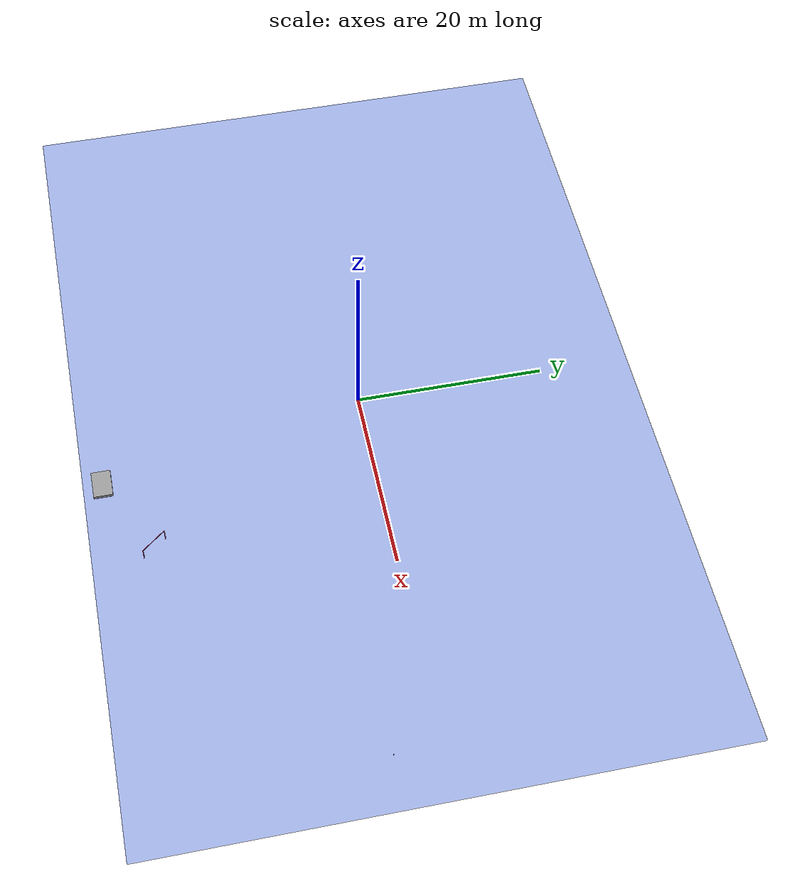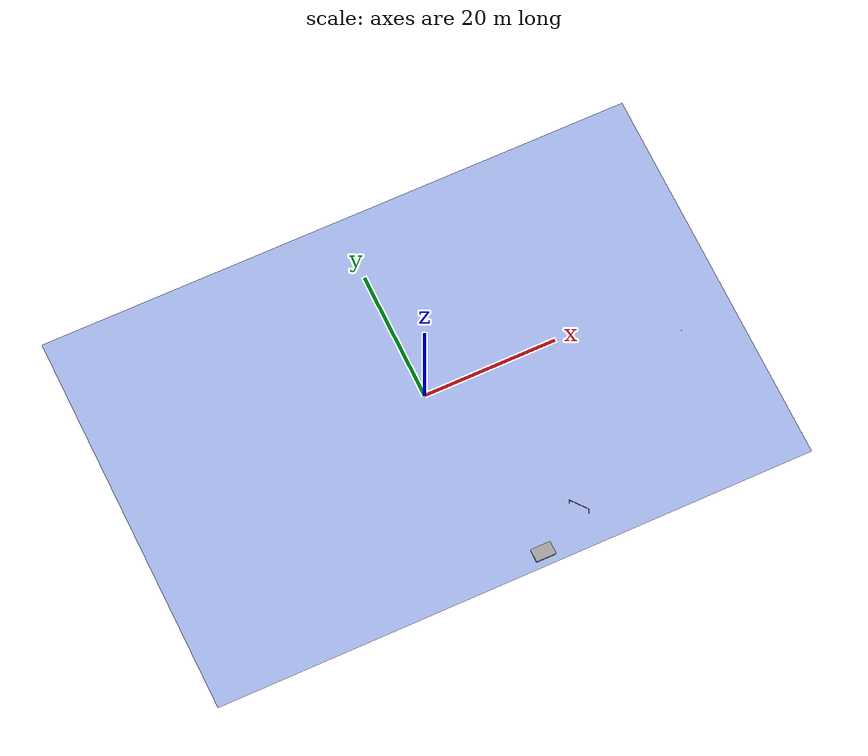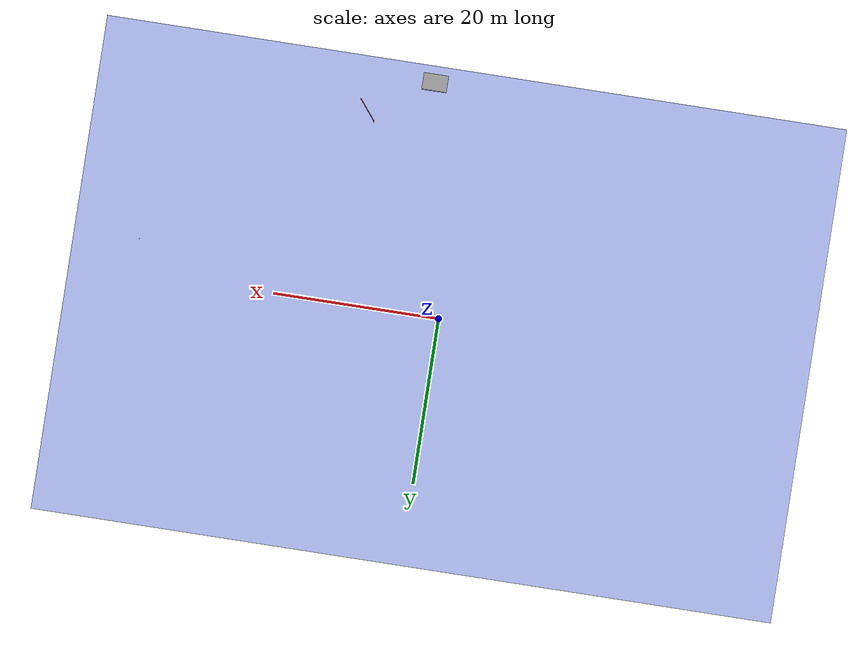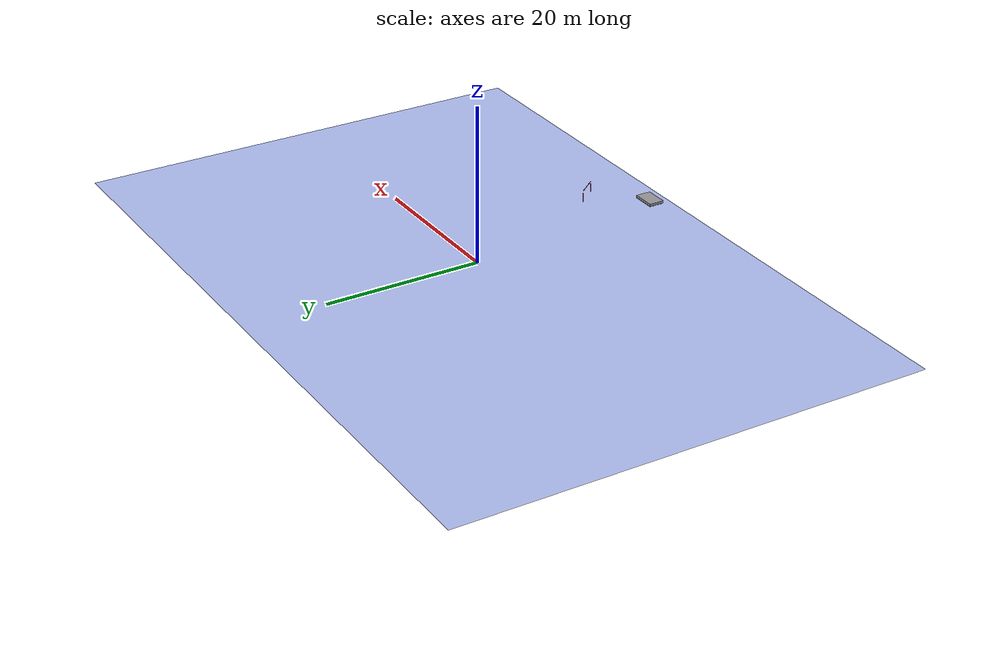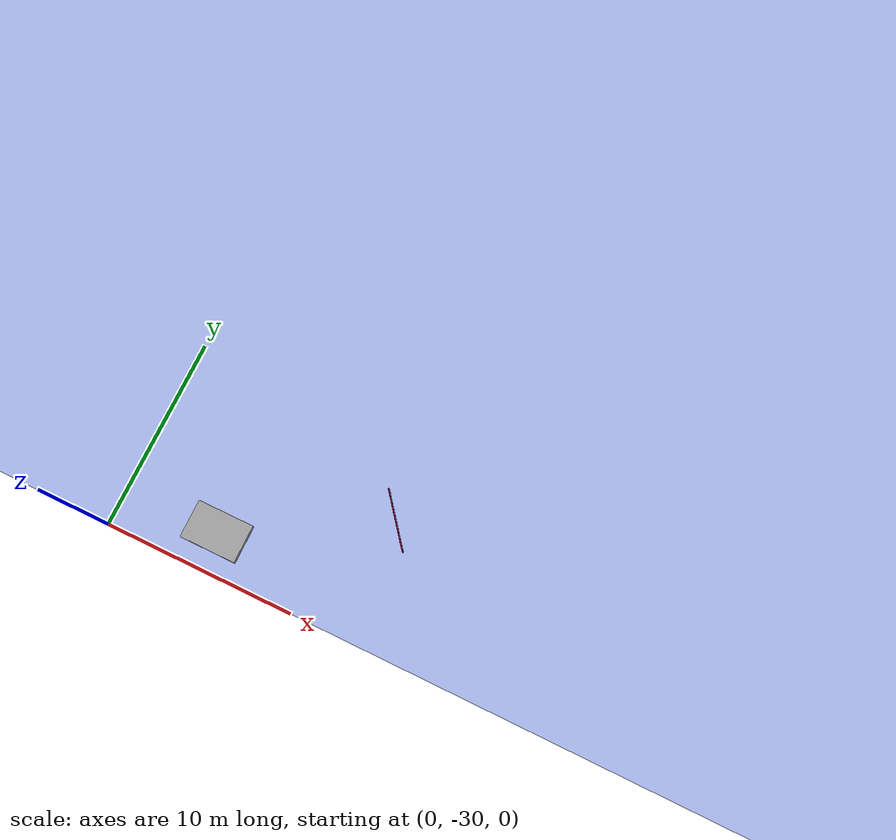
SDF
<sdf version="1.5">
 <world name="default">
  <scene>
   <ambient>0.25 0.3 1 1</ambient>
   <grid>0</grid>
   <background>0.25 0.3 1 1</background>
   <shadows>1</shadows>
  </scene>
  <light type="directional" name="sun0">
   <pose>8 -21 10 0 0.8 -2.8</pose>
   <diffuse>0.8 0.8 0.8 1</diffuse>
   <specular>0.2 0.2 0.2 1</specular>
   <attenuation>
    <range>1000</range>
    <constant>0.9</constant>
    <linear>0.01</linear>
    <quadratic>0.001</quadratic>
   </attenuation>
   <direction>-0.5 0.1 -0.9</direction>
  </light>
  <light type="directional" name="sun1">
   <pose>8 -20 10 0 0.8 0</pose>
   <diffuse>0.8 0.8 0.8 1</diffuse>
   <specular>0.2 0.2 0.2 1</specular>
   <attenuation>
    <range>1000</range>
    <constant>0.9</constant>
    <linear>0.01</linear>
    <quadratic>0.001</quadratic>
   </attenuation>
   <direction>-0.5 0.1 -0.9</direction>
  </light>
  <light type="directional" name="sun2">
   <pose>8 -19 10 0 0 0</pose>
   <diffuse>0.8 0.8 0.8 1</diffuse>
   <specular>0.2 0.2 0.2 1</specular>
   <attenuation>
    <range>1000</range>
    <constant>0.9</constant>
    <linear>0.01</linear>
    <quadratic>0.001</quadratic>
   </attenuation>
   <direction>-0.5 0.1 -0.9</direction>
  </light>
  <light type="directional" name="sun3">
   <pose>8 -19 10 1.75 0 0</pose>
   <diffuse>0.8 0.8 0.8 1</diffuse>
   <specular>0.2 0.2 0.2 1</specular>
   <attenuation>
    <range>1000</range>
    <constant>0.9</constant>
    <linear>0.01</linear>
    <quadratic>0.001</quadratic>
   </attenuation>
   <direction>-0.5 0.1 -0.9</direction>
  </light>
  <light type="directional" name="sun4">
   <pose>8 -19 10 1.75 0 2.9</pose>
   <diffuse>0.8 0.8 0.8 1</diffuse>
   <specular>0.2 0.2 0.2 1</specular>
   <attenuation>
    <range>1000</range>
    <constant>0.9</constant>
    <linear>0.01</linear>
    <quadratic>0.001</quadratic>
   </attenuation>
   <direction>-0.5 0.1 -0.9</direction>
  </light>
  <model name="ceiling_plane">
   <static>true</static>
   <pose>0 0 -0.8 0 0 0</pose>
   <link name="link">
    <visual name="visual">
     <cast_shadows>false</cast_shadows>
     <geometry><box><size>90 60 .001</size></box></geometry>
     <material>
      <script><uri>file://media/materials/scripts/gazebo.material</uri><name>Gazebo/BlueTransparent</name></script>
     </material>
     <transparency>0.6</transparency>
    </visual>
   </link>
  </model>
  <model name="dock_side_a">
   <static>true</static>
   <pose>4.8 -28.0 -0.67 0 0 0</pose>
   <link name="link">
    <collision name="collision"><geometry><box><size>3 2 0.35</size></box></geometry></collision>
    <visual name="visual">
     <geometry><box><size>3 2 0.35</size></box></geometry>
     <material>
      <script><uri>file://media/materials/scripts/gazebo.material</uri><name>Gazebo/Grey</name></script>
     </material>
    </visual>
   </link>
  </model>
  <model name="pinger_a">
   <static>true</static>
   <pose>37.88 -4.1 -4.9 0 0 0</pose>
   <link name="link">
    <visual name="visual">
     <geometry><cylinder><radius>0.03</radius><length>0.15</length></cylinder></geometry>
     <material>
      <script><uri>file://media/materials/scripts/gazebo.material</uri><name>Gazebo/FlatBlack</name></script>
     </material>
    </visual>
   </link>
  </model>
  <include><name>gate_side_a</name><pose>12.4 -23.6 -0.9 0 0 -0.9</pose><uri>model://models/gate</uri></include>
  <plugin name="gazebo_ros_state" filename="libgazebo_ros_state.so"/>
 </world>
</sdf>

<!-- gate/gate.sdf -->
<sdf version='1.5'>

  <model name='gate'>
    <pose>0 0 0 0 0 0</pose>
    <self_collide> 0 </self_collide>
    <static>1</static>

    <link name='gate_top'>
      <pose>0 0 0 0 1.5707 0</pose>
      <visual name='gate_top_vis'>
        <geometry>
          <cylinder>
            <radius>0.0381</radius>
            <length>3.05</length>
          </cylinder>
        </geometry>
        <material>
            <ambient>1.0 0.0 0.0 1</ambient>
            <diffuse>1.0 0.0 0.0 1</diffuse>
            <specular>1.0 0.0 0.0 1</specular>
        </material>
      </visual>
      <collision name='gate_top_collide'>
        <geometry>
          <cylinder>
            <radius>0.0381</radius>
            <length>3.05</length>
          </cylinder>
        </geometry>
      </collision>
    </link>

    <link name='gate_right'>
      <pose>1.525 0 -0.762 0 0 0</pose>
      <visual name='gate_right_vis'>
        <geometry>
          <cylinder>
            <radius>0.0381</radius>
            <length>1.21</length>
          </cylinder>
        </geometry>
        <material>
            <ambient>1.0 0.0 0.0 1</ambient>
            <diffuse>1.0 0.0 0.0 1</diffuse>
            <specular>1.0 0.0 0.0 1</specular>
        </material>
      </visual>
      <visual name='gate_right_top'>
        <pose>0 0 0.6858 0 0 0</pose>
        <geometry>
          <cylinder>
            <radius>0.0381</radius>
            <length>0.16</length>
          </cylinder>
        </geometry>
        <material>
          <ambient>1.0 0.0 0.0 1</ambient>
            <diffuse>1.0 0.0 0.0 1</diffuse>
            <specular>1.0 0.0 0.0 1</specular>
        </material>
      </visual>
      <visual name='gate_right_bottom'>
        <pose>0 0 -0.6858 0 0 0</pose>
        <geometry>
          <cylinder>
            <radius>0.0381</radius>
            <length>0.16</length>
          </cylinder>
        </geometry>
        <material>
          <ambient>1.0 0.0 0.0 1</ambient>
            <diffuse>1.0 0.0 0.0 1</diffuse>
            <specular>1.0 0.0 0.0 1</specular>
        </material>
      </visual>
      <collision name='gate_right_collide'>
        <geometry>
          <cylinder>
            <radius>0.0381</radius>
            <length>1.52</length>
          </cylinder>
        </geometry>
      </collision>
    </link>

    <link name='gate_left'>
      <pose>-1.525 0 -0.762 0 0 0</pose>
      <visual name='gate_left_vis'>
        <geometry>
          <cylinder>
            <radius>0.0381</radius>
            <length>1.21</length>
          </cylinder>
        </geometry>
        <material>
          <ambient>1.0 0.0 0.0 1</ambient>
          <diffuse>1.0 0.0 0.0 1</diffuse>
          <specular>1.0 0.0 0.0 1</specular>
        </material>
      </visual>
      <visual name='gate_left_top'>
        <pose>0 0 0.6858 0 0 0</pose>
        <geometry>
          <cylinder>
            <radius>0.0381</radius>
            <length>0.16</length>
          </cylinder>
        </geometry>
        <material>
          <ambient>1.0 0.0 0.0 1</ambient>
          <diffuse>1.0 0.0 0.0 1</diffuse>
          <specular>1.0 0.0 0.0 1</specular>
        </material>
      </visual>
      <visual name='gate_left_bottom'>
        <pose>0 0 -0.6858 0 0 0</pose>
        <geometry>
          <cylinder>
            <radius>0.0381</radius>
            <length>0.16</length>
          </cylinder>
        </geometry>
        <material>
          <ambient>1.0 0.0 0.0 1</ambient>
          <diffuse>1.0 0.0 0.0 1</diffuse>
          <specular>1.0 0.0 0.0 1</specular>
        </material>
      </visual>
      <collision name='gate_left_collide'>
        <geometry>
          <cylinder>
            <radius>0.0381</radius>
            <length>1.52</length>
          </cylinder>
        </geometry>
      </collision>
    </link>

  </model>
</sdf>
